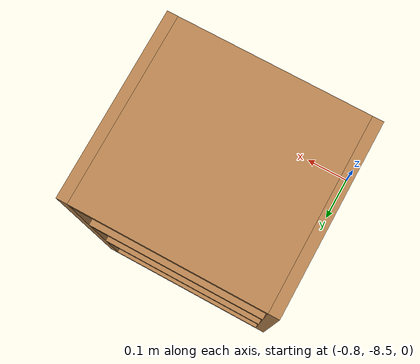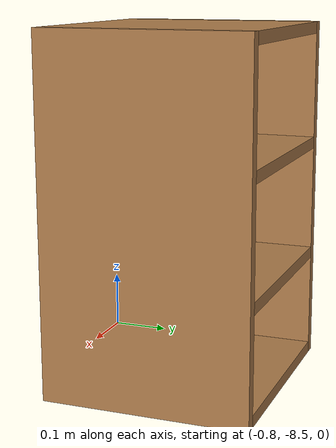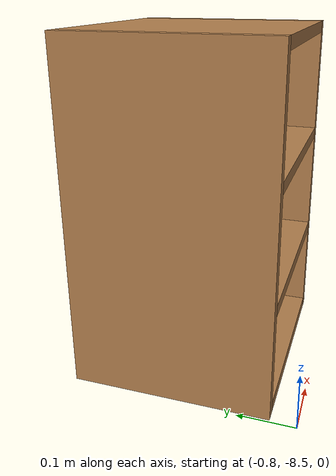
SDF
<?xml version="1.0" ?>
<sdf version='1.4'>
  <model name='mesita_2'>
    <link name='mesita_link'>
      <pose>0 0 0 0 -0 0</pose>
      <inertial>
        <pose>0 0 0.2975 0 -0 0</pose>
        <mass>8</mass>
        <inertia>
          <ixx>0.24835</ixx>
          <ixy>0</ixy>
          <ixz>0</ixz>
          <iyy>0.38525</iyy>
          <iyz>0</iyz>
          <izz>0.1969</izz>
        </inertia>
      </inertial>
      <collision name='mesita_link_collision'>
        <pose>0 0 0.01 0 -0 0</pose>
        <geometry>
          <box>
            <size>0.35 0.35 0.02</size>
          </box>
        </geometry>
        <surface>
          <contact>
            <ode/>
          </contact>
          <friction>
            <ode>
              <mu>100</mu>
              <mu2>100</mu2>
            </ode>
          </friction>
          <bounce/>
        </surface>
        <max_contacts>10</max_contacts>
      </collision>
      <collision name='mesita_link_collision_basal_1_link'>
        <pose>0 0 0.19 0 -0 0</pose>
        <geometry>
          <box>
            <size>0.35 0.35 0.02</size>
          </box>
        </geometry>
        <surface>
          <contact>
            <ode/>
          </contact>
          <friction>
            <ode>
              <mu>100</mu>
              <mu2>100</mu2>
            </ode>
          </friction>
          <bounce/>
        </surface>
        <surface>
          <contact>
            <ode/>
          </contact>
          <friction>
            <ode>
              <mu>100</mu>
              <mu2>100</mu2>
            </ode>
          </friction>
        </surface>
        <max_contacts>10</max_contacts>
      </collision>
      <collision name='mesita_link_collision_basal_2_link'>
        <pose>0 0 0.39 0 -0 0</pose>
        <geometry>
          <box>
            <size>0.35 0.35 0.02</size>
          </box>
        </geometry>
        <surface>
          <contact>
            <ode/>
          </contact>
          <friction>
            <ode>
              <mu>100</mu>
              <mu2>100</mu2>
            </ode>
          </friction>
          <bounce/>
        </surface>
        <surface>
          <contact>
            <ode/>
          </contact>
          <friction>
            <ode>
              <mu>100</mu>
              <mu2>100</mu2>
            </ode>
          </friction>
        </surface>
        <max_contacts>10</max_contacts>
      </collision>
      <collision name='mesita_link_collision_basal_3_link'>
        <pose>0 0 0.59 0 -0 0</pose>
        <geometry>
          <box>
            <size>0.35 0.35 0.02</size>
          </box>
        </geometry>
        <surface>
          <contact>
            <ode/>
          </contact>
          <friction>
            <ode>
              <mu>100</mu>
              <mu2>100</mu2>
            </ode>
          </friction>
          <bounce/>
        </surface>
        <surface>
          <contact>
            <ode/>
          </contact>
          <friction>
            <ode>
              <mu>100</mu>
              <mu2>100</mu2>
            </ode>
          </friction>
        </surface>
        <max_contacts>10</max_contacts>
      </collision>
      <collision name='mesita_link_collision_lateral_1_link'>
        <pose>0.185 0 0.3 0 -0 0</pose>
        <geometry>
          <box>
            <size>0.02 0.35 0.6</size>
          </box>
        </geometry>
        <surface>
          <contact>
            <ode/>
          </contact>
          <friction>
            <ode>
              <mu>100</mu>
              <mu2>100</mu2>
            </ode>
          </friction>
          <bounce/>
        </surface>
        <surface>
          <contact>
            <ode/>
          </contact>
          <friction>
            <ode>
              <mu>100</mu>
              <mu2>100</mu2>
            </ode>
          </friction>
        </surface>
        <max_contacts>10</max_contacts>
      </collision>
      <collision name='mesita_link_collision_lateral_2_link'>
        <pose>-0.185 0 0.3 0 -0 0</pose>
        <geometry>
          <box>
            <size>0.02 0.35 0.6</size>
          </box>
        </geometry>
        <surface>
          <contact>
            <ode/>
          </contact>
          <friction>
            <ode>
              <mu>100</mu>
              <mu2>100</mu2>
            </ode>
          </friction>
          <bounce/>
        </surface>
        <surface>
          <contact>
            <ode/>
          </contact>
          <friction>
            <ode>
              <mu>100</mu>
              <mu2>100</mu2>
            </ode>
          </friction>
        </surface>
        <max_contacts>10</max_contacts>
      </collision>
      <visual name='mesita_link_visual'>
        <pose>0 0 0.01 0 -0 0</pose>
        <geometry>
          <box>
            <size>0.35 0.35 0.02</size>
          </box>
        </geometry>
        <material>
          <script>
            <name>Gazebo/Wood</name>
            <uri>__default__</uri>
          </script>
        </material>
      </visual>
      <visual name='mesita_link_visual_basal_1_link'>
        <pose>0 0 0.19 0 -0 0</pose>
        <geometry>
          <box>
            <size>0.35 0.35 0.02</size>
          </box>
        </geometry>
        <material>
          <script>
            <name>Gazebo/Wood</name>
            <uri>__default__</uri>
          </script>
        </material>
      </visual>
      <visual name='mesita_link_visual_basal_2_link'>
        <pose>0 0 0.39 0 -0 0</pose>
        <geometry>
          <box>
            <size>0.35 0.35 0.02</size>
          </box>
        </geometry>
        <material>
          <script>
            <name>Gazebo/Wood</name>
            <uri>__default__</uri>
          </script>
        </material>
      </visual>
      <visual name='mesita_link_visual_basal_3_link'>
        <pose>0 0 0.59 0 -0 0</pose>
        <geometry>
          <box>
            <size>0.35 0.35 0.02</size>
          </box>
        </geometry>
        <material>
          <script>
            <name>Gazebo/Wood</name>
            <uri>__default__</uri>
          </script>
        </material>
      </visual>
      <visual name='mesita_link_visual_lateral_1_link'>
        <pose>0.185 0 0.3 0 -0 0</pose>
        <geometry>
          <box>
            <size>0.02 0.35 0.6</size>
          </box>
        </geometry>
        <material>
          <script>
            <name>Gazebo/Wood</name>
            <uri>__default__</uri>
          </script>
        </material>
      </visual>
      <visual name='mesita_link_visual_lateral_2_link'>
        <pose>-0.185 0 0.3 0 -0 0</pose>
        <geometry>
          <box>
            <size>0.02 0.35 0.6</size>
          </box>
        </geometry>
        <material>
          <script>
            <name>Gazebo/Wood</name>
            <uri>__default__</uri>
          </script>
        </material>
      </visual>
      <velocity_decay>
        <linear>0</linear>
        <angular>0</angular>
      </velocity_decay>
      <velocity_decay>
        <linear>0</linear>
        <angular>0</angular>
      </velocity_decay>
      <velocity_decay>
        <linear>0</linear>
        <angular>0</angular>
      </velocity_decay>
      <velocity_decay>
        <linear>0</linear>
        <angular>0</angular>
      </velocity_decay>
      <velocity_decay>
        <linear>0</linear>
        <angular>0</angular>
      </velocity_decay>
      <gravity>1</gravity>
      <velocity_decay>
        <linear>0</linear>
        <angular>0</angular>
      </velocity_decay>
      <self_collide>1</self_collide>
      <kinematic>0</kinematic>
    </link>
    <pose>-0.6 -8.28 0 0 -0 0</pose>
    <static>0</static>
  </model>
</sdf>
